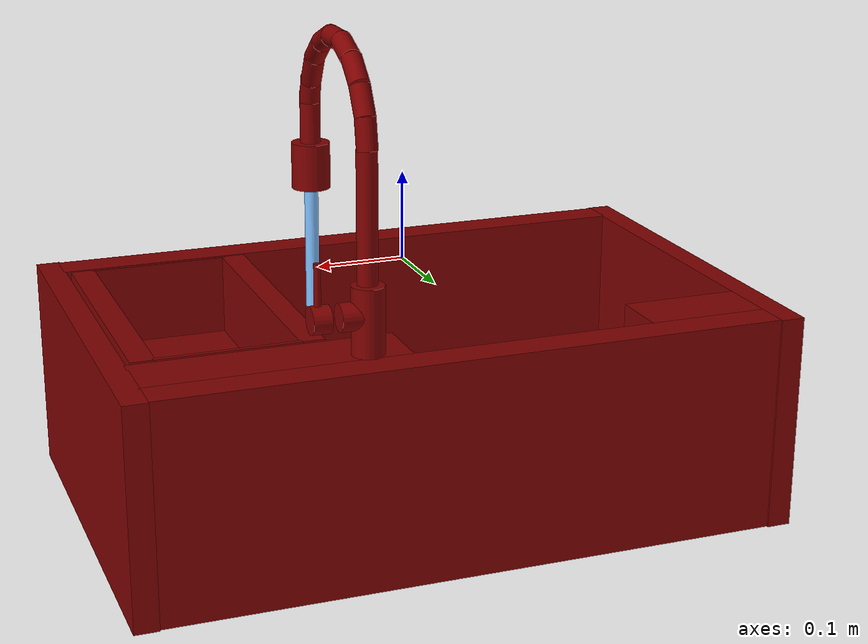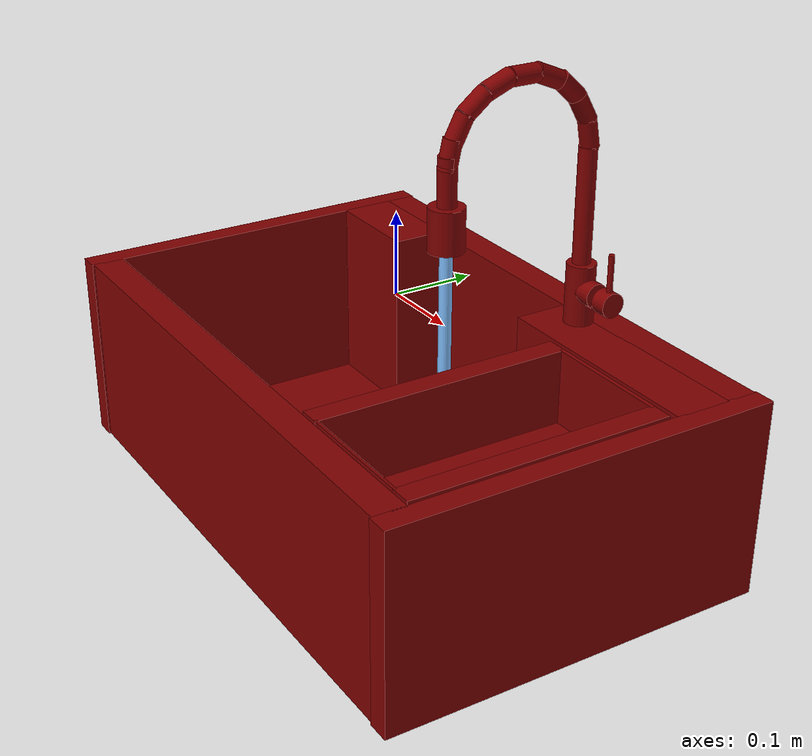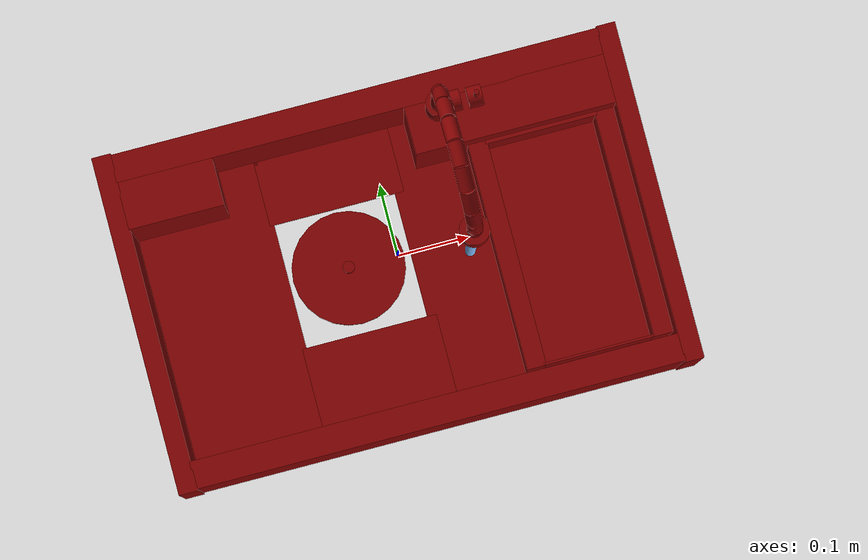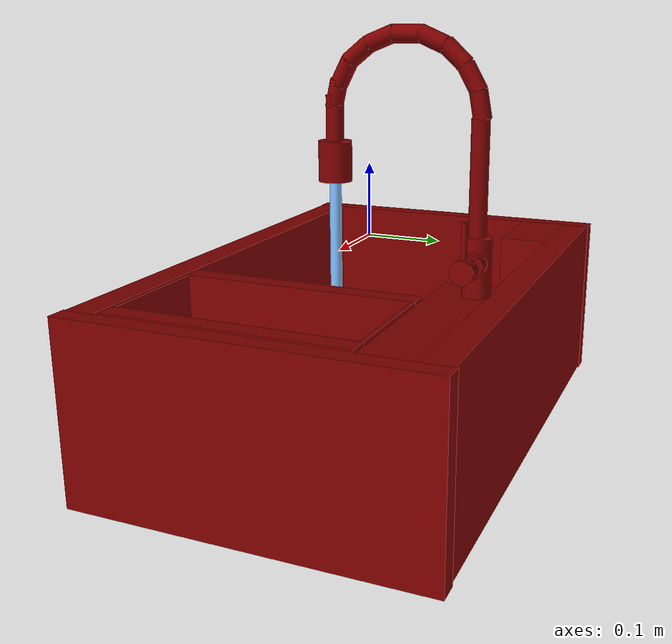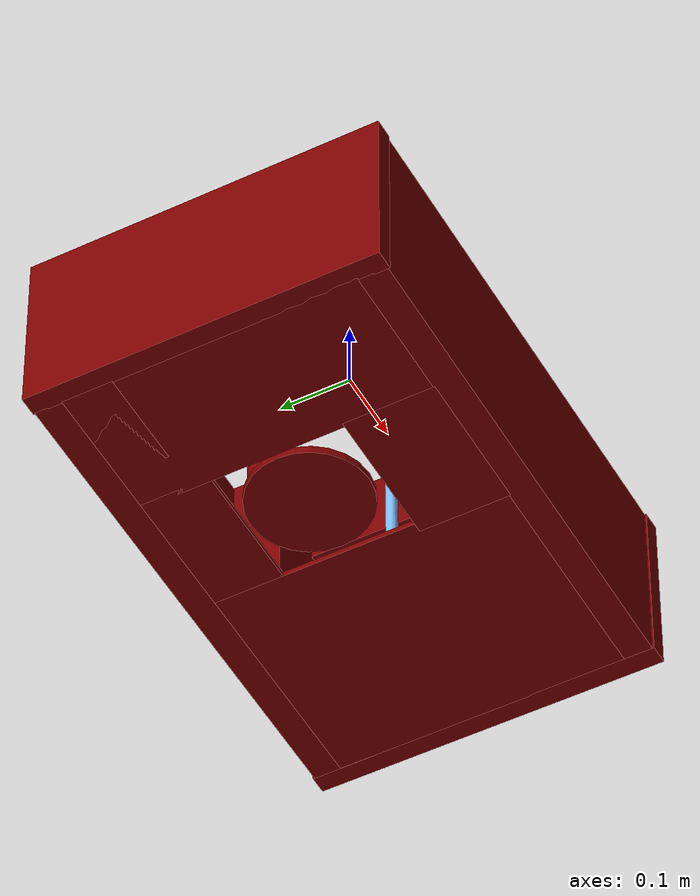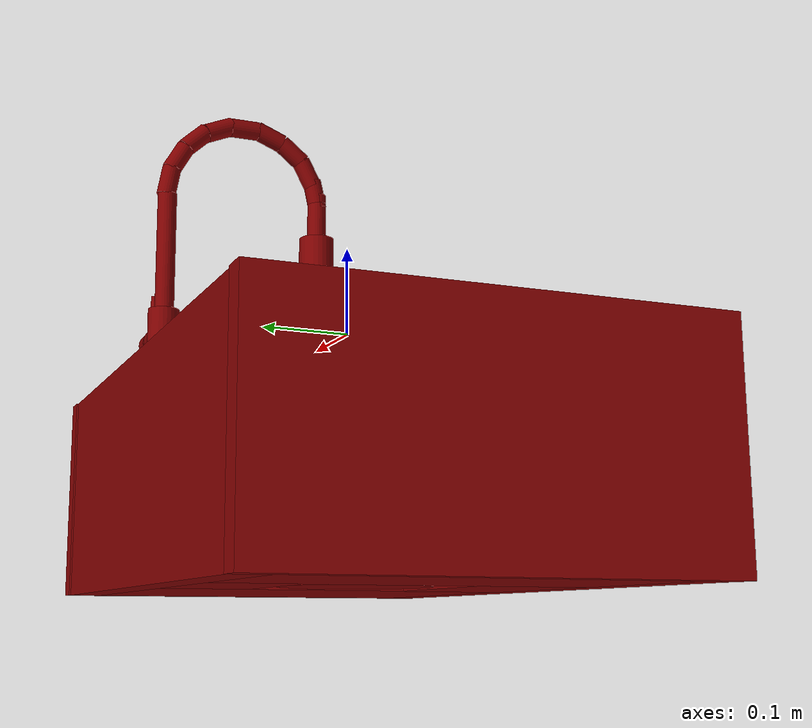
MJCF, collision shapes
<mujoco model="model">
  <compiler angle="radian"/>
  <asset>
    <mesh file="visuals/handle.obj" name="handle_vis"/>
    <mesh file="visuals/Body001.obj" name="Body001_vis"/>
    <mesh file="visuals/Container001.obj" name="Container001_vis"/>
    <mesh file="visuals/Funnel001.obj" name="Funnel001_vis"/>
    <mesh file="visuals/spout.obj" name="spout_vis"/>
    <texture file="visuals/T_BC001.png" name="Body001_material" type="2d"/>
    <material name="Body001_material" rgba="1 1 1 1.0" texture="Body001_material" shininess="0.4472135901451111" specular="0.3103448502657381"/>
    <texture file="visuals/T_BC001.png" name="handle_material" type="2d"/>
    <material name="handle_material" rgba="1 1 1 1.0" texture="handle_material" shininess="0.4472135901451111" specular="0.3103448502657381"/>
    <texture file="visuals/T_BC001.png" name="Container001_material" type="2d"/>
    <material name="Container001_material" rgba="1 1 1 1.0" texture="Container001_material" shininess="0.4472135901451111" specular="0.3103448502657381"/>
    <texture file="visuals/T_BC001.png" name="Funnel001_material" type="2d"/>
    <material name="Funnel001_material" rgba="1 1 1 1.0" texture="Funnel001_material" shininess="0.4472135901451111" specular="0.3103448502657381"/>
    <texture file="visuals/T_BC001.png" name="spout_material" type="2d"/>
    <material name="spout_material" rgba="1 1 1 1.0" texture="spout_material" shininess="0.4472135901451111" specular="0.3103448502657381"/>
  </asset>
  <default>
    <default class="visual">
      <geom conaffinity="0" contype="0" group="1" type="mesh"/>
    </default>
    <default class="collision">
      <geom group="0" rgba="0.5 0 0 0.5"/>
    </default>
    <default class="spawn">
      <geom group="0" rgba="1 1 1 0.5" contype="0" conaffinity="0"/>
      <site group="0" rgba="1 1 1 0.5"/>
    </default>
    <default class="region">
      <geom group="1" conaffinity="0" contype="0" rgba="0 1 0 0"/>
    </default>
  </default>
  <worldbody>
    <body>
      <body name="object">
        <geom mesh="Body001_vis" type="mesh" solimp="0.998 0.998 0.001" solref="0.001 1" density="100" friction="0.95 0.3 0.1" class="visual" material="Body001_material"/>
        <geom class="collision" type="box" pos="-0.363830 -0.000338 -0.161553" size="0.013671009801328182 0.24174749851226807 0.12321797758340836" quat="1.0 0.0 0.0 0.0"/>
        <geom class="collision" type="box" pos="0.361280 -0.000338 -0.161553" size="0.013671009801328182 0.24174749851226807 0.12321797758340836" quat="1.0 0.0 0.0 0.0"/>
        <geom class="collision" type="box" pos="-0.001262 -0.220034 -0.161553" size="0.35077476501464844 0.019699759781360626 0.12321797758340836" quat="1.0 0.0 0.0 0.0"/>
        <geom class="collision" type="box" pos="-0.001262 0.219407 -0.161553" size="0.35077476501464844 0.019699759781360626 0.12321797758340836" quat="1.0 0.0 0.0 0.0"/>
        <geom class="collision" type="box" pos="-0.283580 0.166873 -0.161553" size="0.0684567540884018 0.03480720520019531 0.12321797758340836" quat="1.0 0.0 0.0 0.0"/>
        <geom class="collision" type="box" pos="0.185828 0.000450 -0.281334" size="0.16326160728931427 0.2012304663658142 0.003437081119045615" quat="1.0 0.0 0.0 0.0"/>
        <geom class="collision" type="box" pos="0.185828 0.000450 -0.281334" size="0.16326160728931427 0.2012304663658142 0.003437081119045615" quat="1.0 0.0 0.0 0.0"/>
        <geom class="collision" type="box" pos="-0.255635 0.000450 -0.281334" size="0.0992811918258667 0.2012304663658142 0.003437081119045615" quat="1.0 0.0 0.0 0.0"/>
        <geom class="collision" type="box" pos="-0.063290 0.153534 -0.281334" size="0.0992811918258667 0.04814619570970535 0.003437081119045615" quat="1.0 0.0 0.0 0.0"/>
        <geom class="collision" type="box" pos="-0.063290 -0.139756 -0.280742" size="0.0992811918258667 0.06256590783596039 0.004029376432299614" quat="1.0 0.0 0.0 0.0"/>
        <geom class="collision" type="box" pos="0.204987 0.166873 -0.161553" size="0.14454804360866547 0.03480720892548561 0.12321797758340836" quat="1.0 0.0 0.0 0.0"/>
        <geom class="collision" type="cylinder" pos="0.106040 0.186669 -0.000636" size="0.018023207783699036 0.037181321531534195" quat="0.7071067094802856 0.0 0.0 0.7071068286895752"/>
        <geom class="collision" type="cylinder" pos="0.121151 0.186967 0.005171" size="0.0151016591116786 0.016585635021328926" quat="0.49999943375587463 0.5000000596046448 0.500000536441803 0.4999999403953552"/>
        <body name="handle">
          <joint axis="1.0 0.0 0.0" pos="0.154831 0.185952 0.005091" limited="true" name="handle_joint_hinge_0" type="hinge" range="-0.7853981633974483 0.7853981633974483" damping="1" frictionloss="1" armature=".01" stiffness="0.05"/>
          <joint axis="0.0 1.0 0.0" pos="0.154831 0.185952 0.005091" limited="true" name="handle_joint_hinge_1" type="hinge" range="0.0 0.17453292519943295" damping="1" frictionloss="1" armature=".01" stiffness="0.05"/>
          <geom mesh="handle_vis" type="mesh" solimp="0.998 0.998 0.001" solref="0.001 1" density="100" friction="0.95 0.3 0.1" class="visual" material="handle_material"/>
          <geom class="collision" type="cylinder" pos="0.158018 0.185855 0.005171" size="0.0151016591116786 0.010204732418060303" quat="0.49999943375587463 0.5000000596046448 0.500000536441803 0.4999999403953552"/>
          <geom class="collision" type="cylinder" pos="0.159845 0.186028 0.042540" size="0.0035856820177286863 0.022539718076586723" quat="1.0 0.0 0.0 0.0"/>
        </body>
        <body name="Container001">
          <joint axis="0.0 0.0 1.0" pos="0.237648 -0.030899 -0.093218" limited="true" name="Container001_joint" range="0.0 0.1" type="slide" damping="1" frictionloss="1" armature=".01" stiffness="0.05"/>
          <geom mesh="Container001_vis" type="mesh" solimp="0.998 0.998 0.001" solref="0.001 1" density="100" friction="0.95 0.3 0.1" class="visual" material="Container001_material"/>
          <geom class="collision" type="box" pos="0.146853 -0.035084 -0.086265" size="0.013671009801328182 0.16157479584217072 0.047929175198078156" quat="1.0 0.0 0.0 0.0"/>
          <geom class="collision" type="box" pos="0.328574 -0.035084 -0.086265" size="0.013671009801328182 0.16157479584217072 0.047929175198078156" quat="1.0 0.0 0.0 0.0"/>
          <geom class="collision" type="box" pos="0.237593 0.124181 -0.086495" size="0.0800362229347229 0.0027264582458883524 0.04815938323736191" quat="1.0 0.0 0.0 0.0"/>
          <geom class="collision" type="box" pos="0.237593 -0.194707 -0.086495" size="0.0800362229347229 0.0016649627359583974 0.04815938323736191" quat="1.0 0.0 0.0 0.0"/>
          <geom class="collision" type="box" pos="0.237593 -0.035954 -0.132978" size="0.0800362229347229 0.15828107297420502 0.0016766269691288471" quat="1.0 0.0 0.0 0.0"/>
        </body>
        <body name="Funnel001">
          <joint axis="0.0 0.0 1.0" pos="-0.068430 0.018310 -0.268688" limited="true" name="Funnel001_joint" range="0.0 0.1" type="slide" damping="1" frictionloss="1" armature=".01" stiffness="0.05"/>
          <geom mesh="Funnel001_vis" type="mesh" solimp="0.998 0.998 0.001" solref="0.001 1" density="100" friction="0.95 0.3 0.1" class="visual" material="Funnel001_material"/>
          <geom class="collision" type="cylinder" pos="-0.068511 0.018334 -0.278391" size="0.08186228573322296 0.005626589525490999" quat="1.0 0.0 0.0 0.0"/>
          <geom class="collision" type="cylinder" pos="-0.068444 0.018302 -0.258104" size="0.008613985031843185 0.008613985031843185" quat="1.0 0.0 0.0 0.0"/>
        </body>
        <body name="spout">
          <joint axis="0.0 0.0 1.0" pos="0.106163 0.186213 0.129832" limited="true" name="spout_joint" range="-0.7853981633974483 0.7853981633974483" type="hinge" damping="1" frictionloss="1" armature=".01" stiffness="0.05"/>
          <site type="cylinder" rgba="0.5 0.75 1 1" size="0.00759623060002923 0.18461593985557556" pos="0.106215 -0.001785 -0.091908" name="water"/>
          <geom mesh="spout_vis" type="mesh" solimp="0.998 0.998 0.001" solref="0.001 1" density="100" friction="0.95 0.3 0.1" class="visual" material="spout_material"/>
          <geom class="collision" type="cylinder" pos="0.106135 0.186075 0.107427" size="0.011182444170117378 0.07005099207162857" quat="1.0 0.0 0.0 0.0"/>
          <geom class="collision" type="cylinder" pos="0.106135 -0.001690 0.170887" size="0.011182444170117378 0.028290700167417526" quat="1.0 0.0 0.0 0.0"/>
          <geom class="collision" type="cylinder" pos="0.106135 -0.001690 0.117471" size="0.021144689992070198 0.025374850258231163" quat="1.0 0.0 0.0 0.0"/>
          <geom class="collision" type="cylinder" pos="0.106135 0.184788 0.192976" size="0.011182444170117378 0.01723991520702839" quat="0.9957955479621887 0.09160369634628296 0.0 0.0"/>
          <geom class="collision" type="cylinder" pos="0.106135 0.174246 0.222814" size="0.011182444170117378 0.01723991520702839" quat="0.9664912223815918 0.25669974088668823 0.0 0.0"/>
          <geom class="collision" type="cylinder" pos="0.106135 0.153342 0.249437" size="0.011182444170117378 0.01723991520702839" quat="0.9160729050636292 0.40101173520088196 0.0 0.0"/>
          <geom class="collision" type="cylinder" pos="0.106135 0.124575 0.266590" size="0.011182444170117378 0.01723991520702839" quat="0.8338097333908081 0.5520519614219666 0.0 0.0"/>
          <geom class="collision" type="cylinder" pos="0.106135 0.092950 0.272128" size="0.011182444170117378 0.01723991520702839" quat="0.7075024843215942 0.7067108750343323 0.0 0.0"/>
          <geom class="collision" type="cylinder" pos="0.106135 0.060718 0.266761" size="0.011182444170117378 0.017239917069673538" quat="0.5624226927757263 0.8268498778343201 0.0 0.0"/>
          <geom class="collision" type="cylinder" pos="0.106135 0.031425 0.250032" size="0.011182444170117378 0.01723991520702839" quat="0.4342154860496521 0.9008090496063232 0.0 0.0"/>
          <geom class="collision" type="cylinder" pos="0.106135 0.011544 0.225873" size="0.011182444170117378 0.01723991520702839" quat="0.23668569326400757 0.971586287021637 0.0 0.0"/>
          <geom class="collision" type="cylinder" pos="0.106135 0.000997 0.200189" size="0.011182444170117378 0.017239917069673538" quat="0.10710156708955765 0.99424809217453 0.0 0.0"/>
        </body>
        <geom class="region" name="reg_main" type="box" pos="-1.500000000015378e-06 -4.499999999990623e-06 -0.16118700000000002" size="0.37499550000000004 0.2399915 0.12224700000000001"/>
        <geom class="region" name="reg_basin" type="box" pos="-0.110463 0.004522499999999999 -0.162551" size="0.239932 0.20460850000000003 0.116093"/>
      </body>
    </body>
  </worldbody>
  <actuator>
    <motor name="handle_joint_hinge_0_actuator" joint="handle_joint_hinge_0" gear="10"/>
    <motor name="handle_joint_hinge_1_actuator" joint="handle_joint_hinge_1" gear="10"/>
    <motor name="Container001_joint_actuator" joint="Container001_joint" gear="50"/>
    <motor name="Funnel001_joint_actuator" joint="Funnel001_joint" gear="10"/>
    <motor name="spout_joint_actuator" joint="spout_joint" gear="10"/>
  </actuator>
</mujoco>
